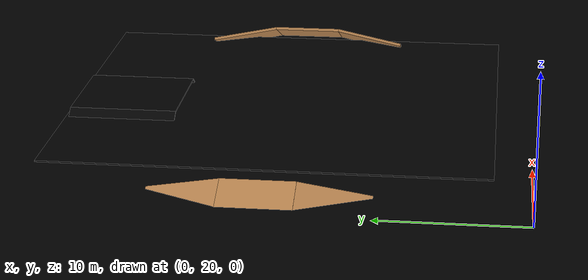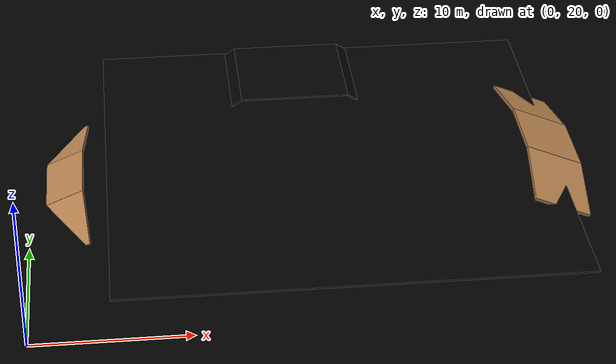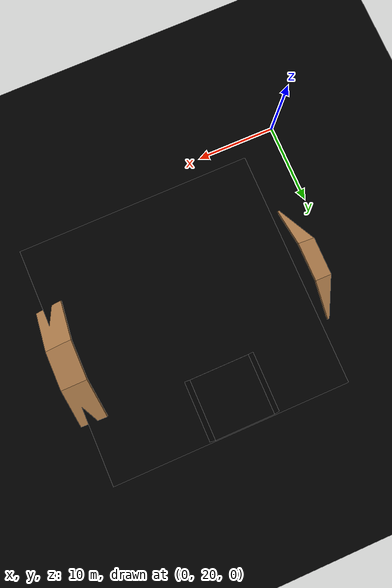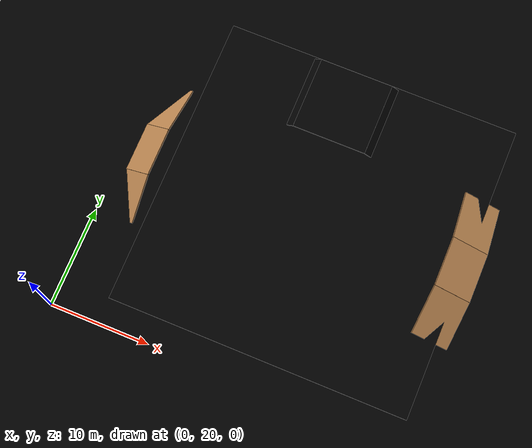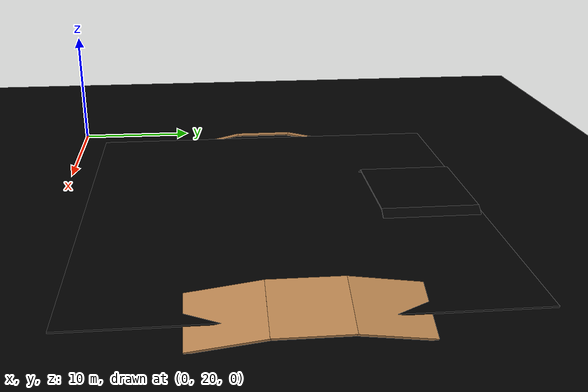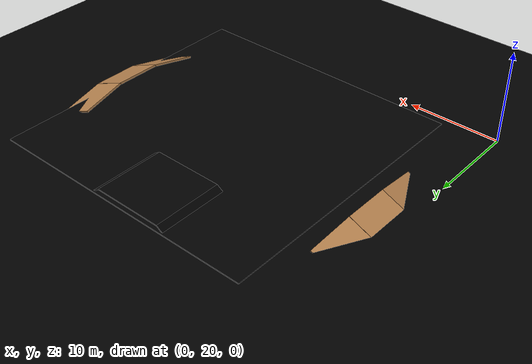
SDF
<sdf version="1.4">
 <world name="default">
  <light name="sun" type="directional">
   <pose>0 0 10 0 -0 0</pose>
   <diffuse>1.0 1.0 1.0 1</diffuse>
   <specular>0.2 0.2 0.2 1</specular>
   <attenuation>
    <range>1000</range>
    <constant>0.9</constant>
    <linear>0.01</linear>
    <quadratic>0.001</quadratic>
   </attenuation>
   <direction>-0.5 -0.5 -1.0</direction>
  </light>
  <include><uri>model://surface</uri></include>
  <include><uri>model://ramp_groundplane</uri><pose>20 37.5 1.1  0 0 0</pose></include>
  <include><uri>model://ramp_groundplane_2</uri><pose>18.34 48.55 1.573  0 0 0</pose></include>
  <include><uri>model://short_ramp</uri><pose>14.205 48.55 1.3  0 -0.6 0</pose></include>
  <include><uri>model://short_ramp</uri><pose>22.475 48.55 1.3  0 0.6 0</pose></include>
  <include><uri>model://3m_ramp</uri><pose>3.64 37.5 0.52  0 -0.4 0</pose></include>
  <include><uri>model://3m_ramp</uri><pose>36.36 37.5 0.52  0 0.4 0</pose></include>
  <physics type="ode">
   <max_step_size>0.001</max_step_size>
   <real_time_factor>1</real_time_factor>
   <real_time_update_rate>1000</real_time_update_rate>
   <gravity>0 0 -9.8</gravity>
  </physics>
  <scene>
   <ambient>1 1 1 1</ambient>
   <background>1 1 1 1</background>
   <shadows>1</shadows>
   <sky><clouds><speed>12</speed></clouds></sky>
  </scene>
  <spherical_coordinates>
   <surface_model>EARTH_WGS84</surface_model>
   <latitude_deg>0</latitude_deg>
   <longitude_deg>0</longitude_deg>
   <elevation>0</elevation>
   <heading_deg>0</heading_deg>
  </spherical_coordinates>
 </world>
</sdf>

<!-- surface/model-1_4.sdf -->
<sdf version="1.4">
  <model name="black_ice_lower_friction">
    <static>true</static>
    <link name="link">
      <collision name="collision">
        <geometry>
          <box>
            <size>200 200 0.1</size>
          </box>
        </geometry>
        <surface>
          <friction>
            <ode>
              <mu>1</mu>
              <mu2>1</mu2>
            </ode>
          </friction>
        </surface>
      </collision>
      <visual name="visual_1">
        <pose>0 0 0 0 0 0</pose>
        <cast_shadows>false</cast_shadows>
        <geometry>
          <box>
            <size>200 200 0.1</size>
          </box>
        </geometry>
        <material>
          <ambient>109 112 113 1</ambient>
          <diffuse>0 0 0 1</diffuse>
          <specular>0 0 0 0</specular>
          <emissive>0 0 0 1</emissive>
        </material>
      </visual>
    </link>
  </model>
</sdf>

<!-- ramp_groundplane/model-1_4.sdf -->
<sdf version="1.4">
  <model name="ramp_groundplane">
    <static>true</static>
    <link name="link">
      <collision name="collision">
        <geometry>
          <box>
            <size>30 30 0.1</size>
          </box>
        </geometry>
        <surface>
          <friction>
            <ode>
              <mu>1</mu>
              <mu2>1</mu2>
            </ode>
          </friction>
        </surface>
      </collision>
      <visual name="visual_1">
        <pose>0 0 0 0 0 0</pose>
        <cast_shadows>false</cast_shadows>
        <geometry>
          <box>
            <size>30 30 0.1</size>
          </box>
        </geometry>
        <material>
          <ambient>137 179 194 1</ambient>
          <diffuse>0 0 0 1</diffuse>
          <specular>0 0 0 0</specular>
          <emissive>0 0 0 1</emissive>
        </material>
      </visual>
    </link>
  </model>
</sdf>

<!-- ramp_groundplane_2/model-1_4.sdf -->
<sdf version="1.4">
  <model name="ramp_groundplane">
    <static>true</static>
    <link name="link">
      <collision name="collision">
        <geometry>
          <box>
            <size>7.5 7.5 0.1</size>
          </box>
        </geometry>
        <surface>
          <friction>
            <ode>
              <mu>1</mu>
              <mu2>1</mu2>
            </ode>
          </friction>
        </surface>
      </collision>
      <visual name="visual_1">
        <pose>0 0 0 0 0 0</pose>
        <cast_shadows>false</cast_shadows>
        <geometry>
          <box>
            <size>7.5 7.5 0.1</size>
          </box>
        </geometry>
        <material>
          <ambient>229 237 239 1</ambient>
          <diffuse>0 0 0 1</diffuse>
          <specular>0 0 0 0</specular>
          <emissive>0 0 0 1</emissive>
        </material>
      </visual>
    </link>
  </model>
</sdf>

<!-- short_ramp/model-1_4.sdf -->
<sdf version="1.4">
  <model name="basic_ramp">
    <static>true</static>
    <link name="link">
      <collision name="collision">
        <geometry>
          <box>
            <size>1 7.5 0.1</size>
          </box>
        </geometry>
        <surface>
          <friction>
            <ode>
              <mu>1</mu>
              <mu2>1</mu2>
              <fdir1>0.000000 0.000000 0.000000</fdir1>
              <slip1>0.000000</slip1>
              <slip2>0.000000</slip2>
            </ode>
          </friction>
          <bounce>
            <restitution_coefficient>0.000000</restitution_coefficient>
            <threshold>100000.000000</threshold>
          </bounce>
          <contact>
            <ode>
              <soft_cfm>0.000000</soft_cfm>
              <soft_erp>0.200000</soft_erp>
              <kp>100000.000000</kp>
              <kd>1.000000</kd>
              <max_vel>100.000000</max_vel>
              <min_depth>0.001000</min_depth>
            </ode>
          </contact>
        </surface>
      </collision>
      <visual name="visual_1">
        <pose>0 0 0  0 0 0</pose>
        <cast_shadows>true</cast_shadows>
        <geometry>
          <box>
            <size>1 7.5 0.1</size>
          </box>
        </geometry>
        <material>
          <ambient>229 237 239 1</ambient>
          <diffuse>0 0 0 1</diffuse>
          <specular>0 0 0 0</specular>
          <emissive>0 0 0 1</emissive>
        </material>
      </visual>
    </link>
  </model>
</sdf>

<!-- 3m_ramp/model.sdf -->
<sdf version="1.4">
  <model name="basic_ramp">
    <static>true</static>
    <link name="link">
      <collision name="collision">
        <geometry>
          <box>
            <size>8 10 0.2</size>
          </box>
        </geometry>
        <surface>
          <friction>
            <ode>
              <mu>10</mu>
              <mu2>10</mu2>
            </ode>
          </friction>
        </surface>
      </collision>
      <visual name="visual_1">
        <pose>-2 4.9 0  -0.2 0 0</pose>
        <cast_shadows>false</cast_shadows>
        <geometry>
          <box>
            <size>4 5 0.2</size>
          </box>
        </geometry>
        <material>
          <script>
            <uri>file://media/materials/scripts/gazebo.material</uri>
            <name>Gazebo/Wood</name>
          </script>
        </material>
      </visual>
      <visual name="visual_2">
        <pose>-2 -4.9 0  0.2 0 0</pose>
        <cast_shadows>false</cast_shadows>
        <geometry>
          <box>
            <size>4 5 0.2</size>
          </box>
        </geometry>
        <material>
          <script>
            <uri>file://media/materials/scripts/gazebo.material</uri>
            <name>Gazebo/Wood</name>
          </script>
        </material>
      </visual>
      <visual name="visual_3">
        <pose>-2 0 0.5  0 0 0</pose>
        <cast_shadows>false</cast_shadows>
        <geometry>
          <box>
            <size>4 5 0.2</size>
          </box>
        </geometry>
        <material>
          <script>
            <uri>file://media/materials/scripts/gazebo.material</uri>
            <name>Gazebo/Wood</name>
          </script>
        </material>
      </visual>
    </link>
  </model>
</sdf>
